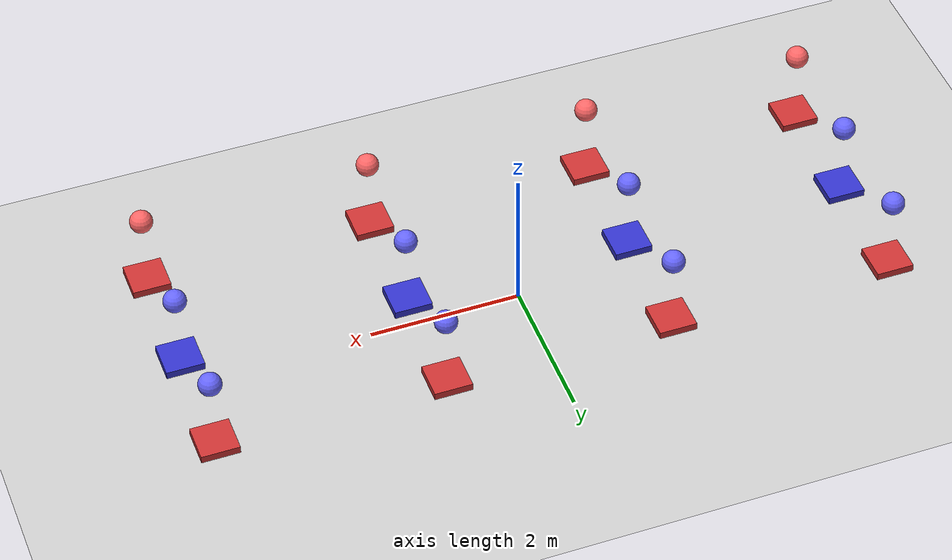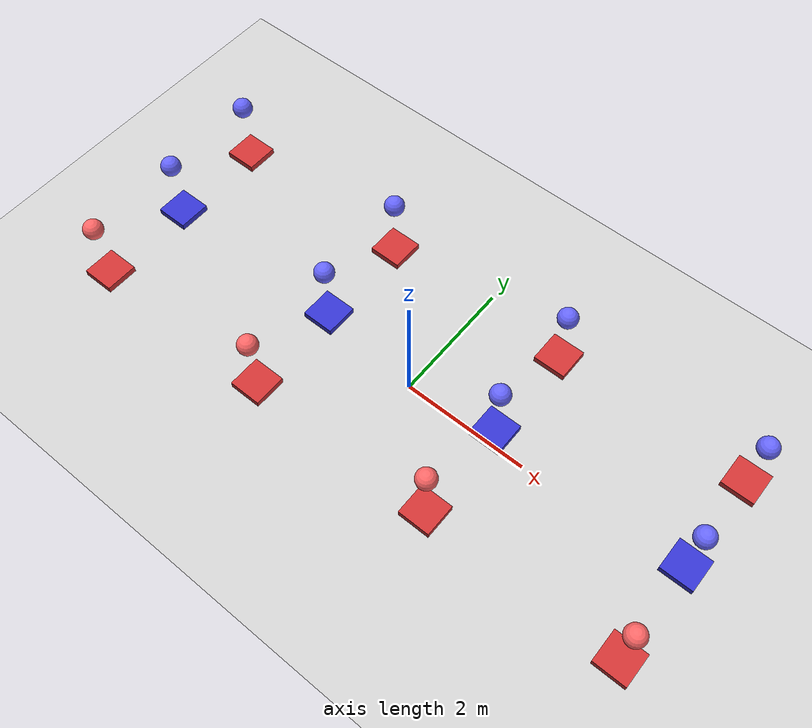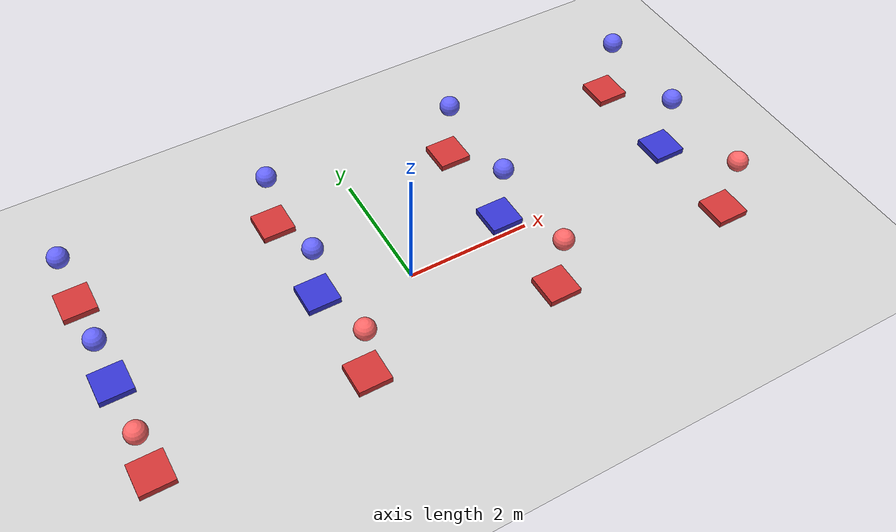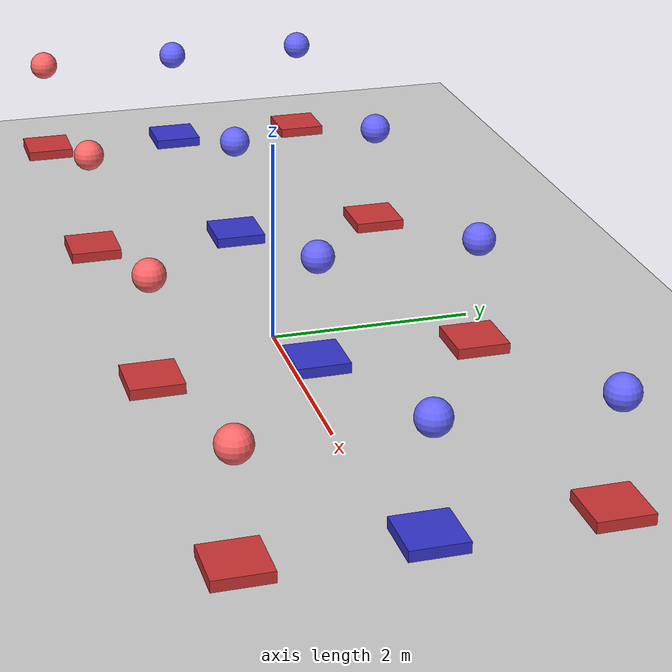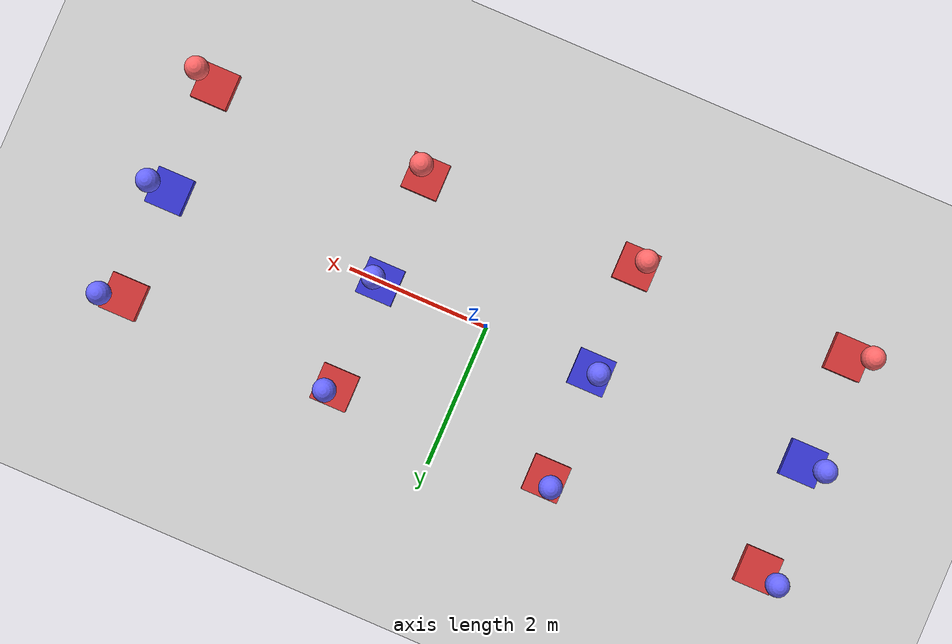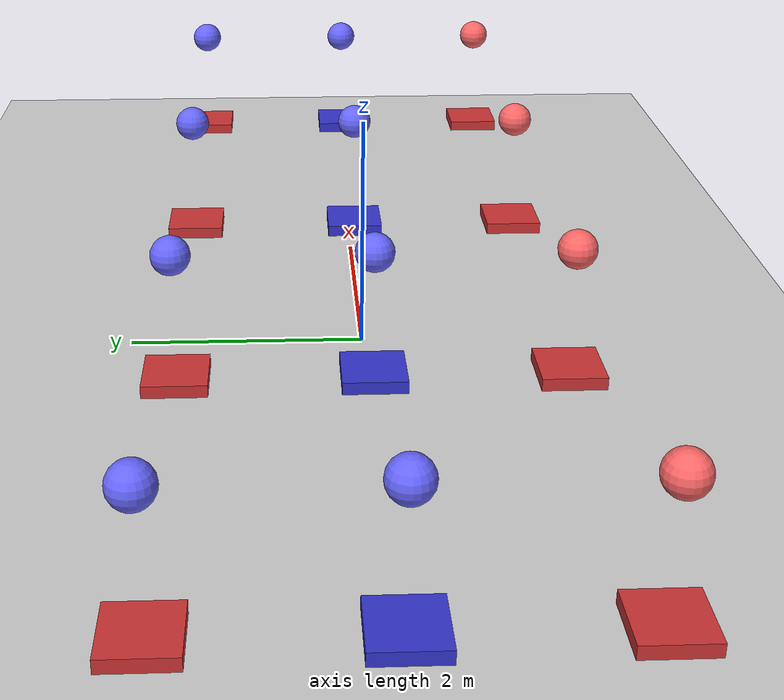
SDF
<sdf version="1.9">
  <world name="nested_self_collide_test">
    <physics type="ode">
      <max_step_size>0.001</max_step_size>
      <real_time_factor>1</real_time_factor>
      <real_time_update_rate>1000</real_time_update_rate>
    </physics>

    <!-- Ground Plane -->
    <model name="ground_plane">
      <static>true</static>
      <link name="link">
        <collision name="collision">
          <geometry>
            <plane>
              <normal>0 0 1</normal>
              <size>100 100</size>
            </plane>
          </geometry>
        </collision>
        <visual name="visual">
          <geometry>
            <plane>
              <normal>0 0 1</normal>
              <size>100 100</size>
            </plane>
          </geometry>
          <material>
            <ambient>0.8 0.8 0.8 1</ambient>
            <diffuse>0.8 0.8 0.8 1</diffuse>
          </material>
        </visual>
      </link>
    </model>

    <!-- Sun -->
    <light type="directional" name="sun">
      <cast_shadows>true</cast_shadows>
      <pose>0 0 10 0 0 0</pose>
      <diffuse>0.8 0.8 0.8 1</diffuse>
      <specular>0.2 0.2 0.2 1</specular>
      <direction>-0.5 0.1 -0.9</direction>
    </light>

    <!-- CASE 1: Parent: TRUE, Child: TRUE         -->
    <model name="case1_parent_true_child_true">
      <pose>-4.5 0 0 0 0 0</pose>
      <self_collide>true</self_collide>

      <!-- PP Test (Parent-Parent) -->
      <link name="parent_platform_pp">
        <pose>0 -1.5 0.5 0 0 0</pose>
        <collision name="col">
          <geometry><box><size>0.5 0.5 0.1</size></box></geometry>
        </collision>
        <visual name="vis">
          <geometry><box><size>0.5 0.5 0.1</size></box></geometry>
          <material>
            <ambient>0.8 0.2 0.2 1</ambient>
            <diffuse>0.8 0.2 0.2 1</diffuse>
          </material>
        </visual>
      </link>

      <link name="parent_dropper_pp">
        <pose>0 -1.5 1.5 0 0 0</pose>
        <collision name="col">
          <geometry><sphere><radius>0.15</radius></sphere></geometry>
        </collision>
        <visual name="vis">
          <geometry><sphere><radius>0.15</radius></sphere></geometry>
          <material>
            <ambient>1.0 0.4 0.4 1</ambient>
            <diffuse>1.0 0.4 0.4 1</diffuse>
          </material>
        </visual>
      </link>

      <joint name="parent_joint_pp" type="fixed">
        <parent>world</parent>
        <child>parent_platform_pp</child>
      </joint>

      <!-- PC Test (Parent-Child - Parent Platform) -->
      <link name="parent_platform_pc">
        <pose>0 1.5 0.5 0 0 0</pose>
        <collision name="col">
          <geometry><box><size>0.5 0.5 0.1</size></box></geometry>
        </collision>
        <visual name="vis">
          <geometry><box><size>0.5 0.5 0.1</size></box></geometry>
          <material>
            <ambient>0.8 0.2 0.2 1</ambient>
            <diffuse>0.8 0.2 0.2 1</diffuse>
          </material>
        </visual>
      </link>

      <joint name="parent_joint_pc" type="fixed">
        <parent>world</parent>
        <child>parent_platform_pc</child>
      </joint>

      <!-- Nested Child Model -->
      <model name="child_model">
        <self_collide>true</self_collide>

        <!-- CC Test (Child-Child) -->
        <link name="child_platform_cc">
          <pose>0 0 0.5 0 0 0</pose>
          <collision name="col">
            <geometry><box><size>0.5 0.5 0.1</size></box></geometry>
          </collision>
          <visual name="vis">
            <geometry><box><size>0.5 0.5 0.1</size></box></geometry>
            <material>
              <ambient>0.2 0.2 0.8 1</ambient>
              <diffuse>0.2 0.2 0.8 1</diffuse>
            </material>
          </visual>
        </link>

        <link name="child_dropper_cc">
          <pose>0 0 1.5 0 0 0</pose>
          <collision name="col">
            <geometry><sphere><radius>0.15</radius></sphere></geometry>
          </collision>
          <visual name="vis">
            <geometry><sphere><radius>0.15</radius></sphere></geometry>
            <material>
              <ambient>0.4 0.4 1.0 1</ambient>
              <diffuse>0.4 0.4 1.0 1</diffuse>
            </material>
          </visual>
        </link>

        <!-- PC Test (Parent-Child - Child Dropper) -->
        <link name="child_dropper_pc">
          <pose>0 1.5 1.5 0 0 0</pose>
          <collision name="col">
            <geometry><sphere><radius>0.15</radius></sphere></geometry>
          </collision>
          <visual name="vis">
            <geometry><sphere><radius>0.15</radius></sphere></geometry>
            <material>
              <ambient>0.4 0.4 1.0 1</ambient>
              <diffuse>0.4 0.4 1.0 1</diffuse>
            </material>
          </visual>
        </link>
      </model>

      <joint name="child_joint_cc" type="fixed">
        <parent>world</parent>
        <child>child_model::child_platform_cc</child>
      </joint>
    </model>

    <!-- CASE 2: Parent: TRUE, Child: FALSE        -->
    <model name="case2_parent_true_child_false">
      <pose>-1.5 0 0 0 0 0</pose>
      <self_collide>true</self_collide>

      <!-- PP Test (Parent-Parent) -->
      <link name="parent_platform_pp">
        <pose>0 -1.5 0.5 0 0 0</pose>
        <collision name="col">
          <geometry><box><size>0.5 0.5 0.1</size></box></geometry>
        </collision>
        <visual name="vis">
          <geometry><box><size>0.5 0.5 0.1</size></box></geometry>
          <material>
            <ambient>0.8 0.2 0.2 1</ambient>
            <diffuse>0.8 0.2 0.2 1</diffuse>
          </material>
        </visual>
      </link>

      <link name="parent_dropper_pp">
        <pose>0 -1.5 1.5 0 0 0</pose>
        <collision name="col">
          <geometry><sphere><radius>0.15</radius></sphere></geometry>
        </collision>
        <visual name="vis">
          <geometry><sphere><radius>0.15</radius></sphere></geometry>
          <material>
            <ambient>1.0 0.4 0.4 1</ambient>
            <diffuse>1.0 0.4 0.4 1</diffuse>
          </material>
        </visual>
      </link>

      <joint name="parent_joint_pp" type="fixed">
        <parent>world</parent>
        <child>parent_platform_pp</child>
      </joint>

      <!-- PC Test (Parent-Child - Parent Platform) -->
      <link name="parent_platform_pc">
        <pose>0 1.5 0.5 0 0 0</pose>
        <collision name="col">
          <geometry><box><size>0.5 0.5 0.1</size></box></geometry>
        </collision>
        <visual name="vis">
          <geometry><box><size>0.5 0.5 0.1</size></box></geometry>
          <material>
            <ambient>0.8 0.2 0.2 1</ambient>
            <diffuse>0.8 0.2 0.2 1</diffuse>
          </material>
        </visual>
      </link>

      <joint name="parent_joint_pc" type="fixed">
        <parent>world</parent>
        <child>parent_platform_pc</child>
      </joint>

      <!-- Nested Child Model -->
      <model name="child_model">
        <self_collide>false</self_collide>

        <!-- CC Test (Child-Child) -->
        <link name="child_platform_cc">
          <pose>0 0 0.5 0 0 0</pose>
          <collision name="col">
            <geometry><box><size>0.5 0.5 0.1</size></box></geometry>
          </collision>
          <visual name="vis">
            <geometry><box><size>0.5 0.5 0.1</size></box></geometry>
            <material>
              <ambient>0.2 0.2 0.8 1</ambient>
              <diffuse>0.2 0.2 0.8 1</diffuse>
            </material>
          </visual>
        </link>

        <link name="child_dropper_cc">
          <pose>0 0 1.5 0 0 0</pose>
          <collision name="col">
            <geometry><sphere><radius>0.15</radius></sphere></geometry>
          </collision>
          <visual name="vis">
            <geometry><sphere><radius>0.15</radius></sphere></geometry>
            <material>
              <ambient>0.4 0.4 1.0 1</ambient>
              <diffuse>0.4 0.4 1.0 1</diffuse>
            </material>
          </visual>
        </link>

        <!-- PC Test (Parent-Child - Child Dropper) -->
        <link name="child_dropper_pc">
          <pose>0 1.5 1.5 0 0 0</pose>
          <collision name="col">
            <geometry><sphere><radius>0.15</radius></sphere></geometry>
          </collision>
          <visual name="vis">
            <geometry><sphere><radius>0.15</radius></sphere></geometry>
            <material>
              <ambient>0.4 0.4 1.0 1</ambient>
              <diffuse>0.4 0.4 1.0 1</diffuse>
            </material>
          </visual>
        </link>
      </model>

      <joint name="child_joint_cc" type="fixed">
        <parent>world</parent>
        <child>child_model::child_platform_cc</child>
      </joint>
    </model>

    <!-- CASE 3: Parent: FALSE, Child: TRUE        -->
    <model name="case3_parent_false_child_true">
      <pose>1.5 0 0 0 0 0</pose>
      <self_collide>false</self_collide>

      <!-- PP Test (Parent-Parent) -->
      <link name="parent_platform_pp">
        <pose>0 -1.5 0.5 0 0 0</pose>
        <collision name="col">
          <geometry><box><size>0.5 0.5 0.1</size></box></geometry>
        </collision>
        <visual name="vis">
          <geometry><box><size>0.5 0.5 0.1</size></box></geometry>
          <material>
            <ambient>0.8 0.2 0.2 1</ambient>
            <diffuse>0.8 0.2 0.2 1</diffuse>
          </material>
        </visual>
      </link>

      <link name="parent_dropper_pp">
        <pose>0 -1.5 1.5 0 0 0</pose>
        <collision name="col">
          <geometry><sphere><radius>0.15</radius></sphere></geometry>
        </collision>
        <visual name="vis">
          <geometry><sphere><radius>0.15</radius></sphere></geometry>
          <material>
            <ambient>1.0 0.4 0.4 1</ambient>
            <diffuse>1.0 0.4 0.4 1</diffuse>
          </material>
        </visual>
      </link>

      <joint name="parent_joint_pp" type="fixed">
        <parent>world</parent>
        <child>parent_platform_pp</child>
      </joint>

      <!-- PC Test (Parent-Child - Parent Platform) -->
      <link name="parent_platform_pc">
        <pose>0 1.5 0.5 0 0 0</pose>
        <collision name="col">
          <geometry><box><size>0.5 0.5 0.1</size></box></geometry>
        </collision>
        <visual name="vis">
          <geometry><box><size>0.5 0.5 0.1</size></box></geometry>
          <material>
            <ambient>0.8 0.2 0.2 1</ambient>
            <diffuse>0.8 0.2 0.2 1</diffuse>
          </material>
        </visual>
      </link>

      <joint name="parent_joint_pc" type="fixed">
        <parent>world</parent>
        <child>parent_platform_pc</child>
      </joint>

      <!-- Nested Child Model -->
      <model name="child_model">
        <self_collide>true</self_collide>

        <!-- CC Test (Child-Child) -->
        <link name="child_platform_cc">
          <pose>0 0 0.5 0 0 0</pose>
          <collision name="col">
            <geometry><box><size>0.5 0.5 0.1</size></box></geometry>
          </collision>
          <visual name="vis">
            <geometry><box><size>0.5 0.5 0.1</size></box></geometry>
            <material>
              <ambient>0.2 0.2 0.8 1</ambient>
              <diffuse>0.2 0.2 0.8 1</diffuse>
            </material>
          </visual>
        </link>

        <link name="child_dropper_cc">
          <pose>0 0 1.5 0 0 0</pose>
          <collision name="col">
            <geometry><sphere><radius>0.15</radius></sphere></geometry>
          </collision>
          <visual name="vis">
            <geometry><sphere><radius>0.15</radius></sphere></geometry>
            <material>
              <ambient>0.4 0.4 1.0 1</ambient>
              <diffuse>0.4 0.4 1.0 1</diffuse>
            </material>
          </visual>
        </link>

        <!-- PC Test (Parent-Child - Child Dropper) -->
        <link name="child_dropper_pc">
          <pose>0 1.5 1.5 0 0 0</pose>
          <collision name="col">
            <geometry><sphere><radius>0.15</radius></sphere></geometry>
          </collision>
          <visual name="vis">
            <geometry><sphere><radius>0.15</radius></sphere></geometry>
            <material>
              <ambient>0.4 0.4 1.0 1</ambient>
              <diffuse>0.4 0.4 1.0 1</diffuse>
            </material>
          </visual>
        </link>
      </model>

      <joint name="child_joint_cc" type="fixed">
        <parent>world</parent>
        <child>child_model::child_platform_cc</child>
      </joint>
    </model>

    <!-- CASE 4: Parent: FALSE, Child: FALSE       -->
    <model name="case4_parent_false_child_false">
      <pose>4.5 0 0 0 0 0</pose>
      <self_collide>false</self_collide>

      <!-- PP Test (Parent-Parent) -->
      <link name="parent_platform_pp">
        <pose>0 -1.5 0.5 0 0 0</pose>
        <collision name="col">
          <geometry><box><size>0.5 0.5 0.1</size></box></geometry>
        </collision>
        <visual name="vis">
          <geometry><box><size>0.5 0.5 0.1</size></box></geometry>
          <material>
            <ambient>0.8 0.2 0.2 1</ambient>
            <diffuse>0.8 0.2 0.2 1</diffuse>
          </material>
        </visual>
      </link>

      <link name="parent_dropper_pp">
        <pose>0 -1.5 1.5 0 0 0</pose>
        <collision name="col">
          <geometry><sphere><radius>0.15</radius></sphere></geometry>
        </collision>
        <visual name="vis">
          <geometry><sphere><radius>0.15</radius></sphere></geometry>
          <material>
            <ambient>1.0 0.4 0.4 1</ambient>
            <diffuse>1.0 0.4 0.4 1</diffuse>
          </material>
        </visual>
      </link>

      <joint name="parent_joint_pp" type="fixed">
        <parent>world</parent>
        <child>parent_platform_pp</child>
      </joint>

      <!-- PC Test (Parent-Child - Parent Platform) -->
      <link name="parent_platform_pc">
        <pose>0 1.5 0.5 0 0 0</pose>
        <collision name="col">
          <geometry><box><size>0.5 0.5 0.1</size></box></geometry>
        </collision>
        <visual name="vis">
          <geometry><box><size>0.5 0.5 0.1</size></box></geometry>
          <material>
            <ambient>0.8 0.2 0.2 1</ambient>
            <diffuse>0.8 0.2 0.2 1</diffuse>
          </material>
        </visual>
      </link>

      <joint name="parent_joint_pc" type="fixed">
        <parent>world</parent>
        <child>parent_platform_pc</child>
      </joint>

      <!-- Nested Child Model -->
      <model name="child_model">
        <self_collide>false</self_collide>

        <!-- CC Test (Child-Child) -->
        <link name="child_platform_cc">
          <pose>0 0 0.5 0 0 0</pose>
          <collision name="col">
            <geometry><box><size>0.5 0.5 0.1</size></box></geometry>
          </collision>
          <visual name="vis">
            <geometry><box><size>0.5 0.5 0.1</size></box></geometry>
            <material>
              <ambient>0.2 0.2 0.8 1</ambient>
              <diffuse>0.2 0.2 0.8 1</diffuse>
            </material>
          </visual>
        </link>

        <link name="child_dropper_cc">
          <pose>0 0 1.5 0 0 0</pose>
          <collision name="col">
            <geometry><sphere><radius>0.15</radius></sphere></geometry>
          </collision>
          <visual name="vis">
            <geometry><sphere><radius>0.15</radius></sphere></geometry>
            <material>
              <ambient>0.4 0.4 1.0 1</ambient>
              <diffuse>0.4 0.4 1.0 1</diffuse>
            </material>
          </visual>
        </link>

        <!-- PC Test (Parent-Child - Child Dropper) -->
        <link name="child_dropper_pc">
          <pose>0 1.5 1.5 0 0 0</pose>
          <collision name="col">
            <geometry><sphere><radius>0.15</radius></sphere></geometry>
          </collision>
          <visual name="vis">
            <geometry><sphere><radius>0.15</radius></sphere></geometry>
            <material>
              <ambient>0.4 0.4 1.0 1</ambient>
              <diffuse>0.4 0.4 1.0 1</diffuse>
            </material>
          </visual>
        </link>
      </model>

      <joint name="child_joint_cc" type="fixed">
        <parent>world</parent>
        <child>child_model::child_platform_cc</child>
      </joint>
    </model>

  </world>
</sdf>
